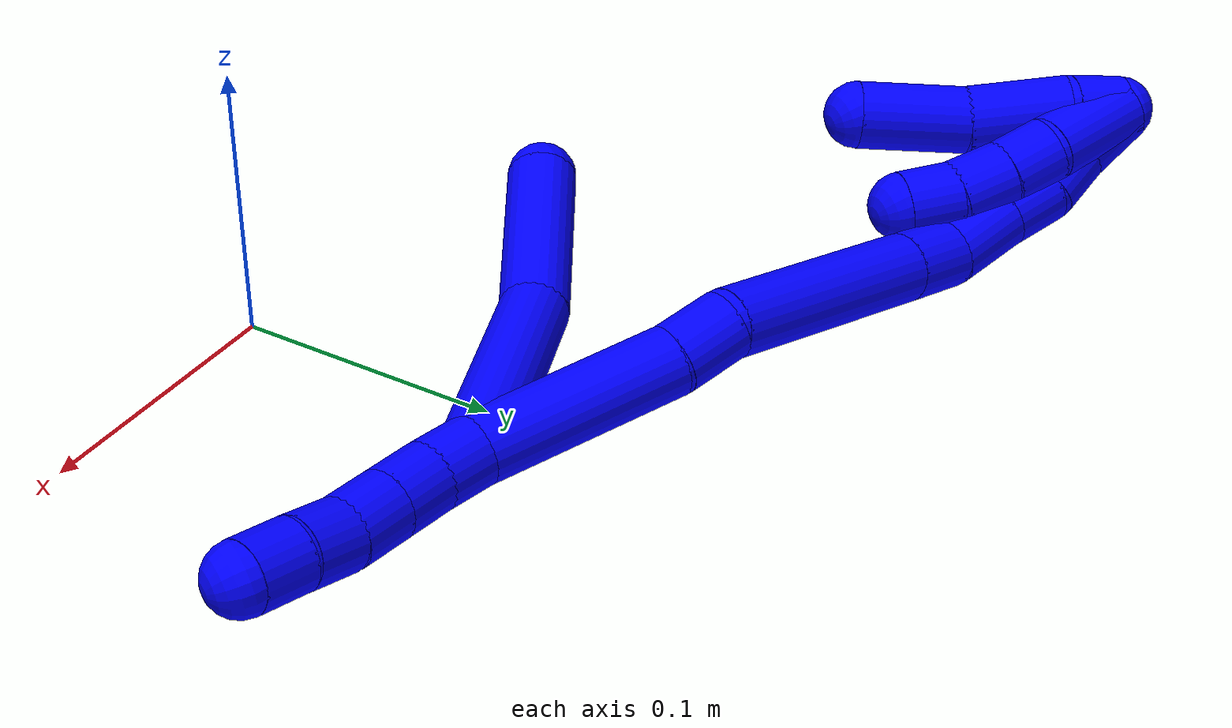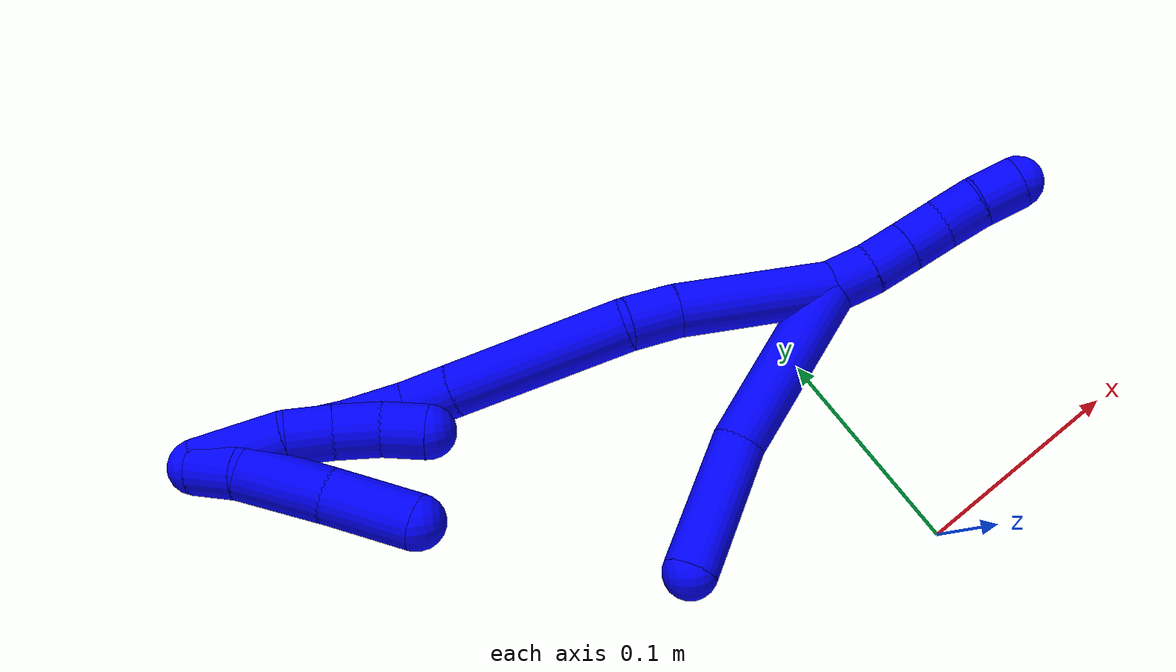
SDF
<sdf version="1.7">
 <world name="default">
  <model name="1">
   <static>0</static>
   <link name="1">
    <collision name="collision-cylinder-e_1_2_8">
     <pose>-0.031897 0.00626 0.027289 -0.225494 -0.850404 0.102455</pose>
     <geometry><cylinder><radius>0.0125</radius><length>0.084883</length></cylinder></geometry>
     <surface>
      <friction><ode><mu>1.16</mu><mu2>1.16</mu2><slip1>0</slip1><slip2>0</slip2></ode></friction>
      <contact><ode><kp>1e+06</kp><kd>1</kd><max_vel>0</max_vel><min_depth>0.001</min_depth></ode></contact>
     </surface>
    </collision>
    <visual name="visual-cylinder-e_1_2_8">
     <pose>-0.031897 0.00626 0.027289 -0.225494 -0.850404 0.102455</pose>
     <geometry><cylinder><radius>0.0125</radius><length>0.084883</length></cylinder></geometry>
     <material><ambient>0 0 1 1</ambient></material>
    </visual>
    <collision name="collision-cylinder-e_2_8_6">
     <pose>-0.09135 0.007956 0.071307 0.266302 -1.00913 -0.14767</pose>
     <geometry><cylinder><radius>0.0125</radius><length>0.065117</length></cylinder></geometry>
     <surface>
      <friction><ode><mu>1.16</mu><mu2>1.16</mu2><slip1>0</slip1><slip2>0</slip2></ode></friction>
      <contact><ode><kp>1e+06</kp><kd>1</kd><max_vel>0</max_vel><min_depth>0.001</min_depth></ode></contact>
     </surface>
    </collision>
    <visual name="visual-cylinder-e_2_8_6">
     <pose>-0.09135 0.007956 0.071307 0.266302 -1.00913 -0.14767</pose>
     <geometry><cylinder><radius>0.0125</radius><length>0.065117</length></cylinder></geometry>
     <material><ambient>0 0 1 1</ambient></material>
    </visual>
    <collision name="collision-cylinder-e_1_2_9">
     <pose>0.00269 -0.001166 -0.009561 3.02025 0.272355 2.30704</pose>
     <geometry><cylinder><radius>0.0125</radius><length>0.02</length></cylinder></geometry>
     <surface>
      <friction><ode><mu>1.16</mu><mu2>1.16</mu2><slip1>0</slip1><slip2>0</slip2></ode></friction>
      <contact><ode><kp>1e+06</kp><kd>1</kd><max_vel>0</max_vel><min_depth>0.001</min_depth></ode></contact>
     </surface>
    </collision>
    <visual name="visual-cylinder-e_1_2_9">
     <pose>0.00269 -0.001166 -0.009561 3.02025 0.272355 2.30704</pose>
     <geometry><cylinder><radius>0.0125</radius><length>0.02</length></cylinder></geometry>
     <material><ambient>0 0 1 1</ambient></material>
    </visual>
    <collision name="collision-cylinder-e_2_9_10">
     <pose>0.009068 -0.004043 -0.028257 2.9564 0.377685 2.237</pose>
     <geometry><cylinder><radius>0.0125</radius><length>0.02</length></cylinder></geometry>
     <surface>
      <friction><ode><mu>1.16</mu><mu2>1.16</mu2><slip1>0</slip1><slip2>0</slip2></ode></friction>
      <contact><ode><kp>1e+06</kp><kd>1</kd><max_vel>0</max_vel><min_depth>0.001</min_depth></ode></contact>
     </surface>
    </collision>
    <visual name="visual-cylinder-e_2_9_10">
     <pose>0.009068 -0.004043 -0.028257 2.9564 0.377685 2.237</pose>
     <geometry><cylinder><radius>0.0125</radius><length>0.02</length></cylinder></geometry>
     <material><ambient>0 0 1 1</ambient></material>
    </visual>
    <collision name="collision-cylinder-e_3_10_11">
     <pose>0.016504 -0.007547 -0.04649 2.94709 0.384281 2.21192</pose>
     <geometry><cylinder><radius>0.0125</radius><length>0.02</length></cylinder></geometry>
     <surface>
      <friction><ode><mu>1.16</mu><mu2>1.16</mu2><slip1>0</slip1><slip2>0</slip2></ode></friction>
      <contact><ode><kp>1e+06</kp><kd>1</kd><max_vel>0</max_vel><min_depth>0.001</min_depth></ode></contact>
     </surface>
    </collision>
    <visual name="visual-cylinder-e_3_10_11">
     <pose>0.016504 -0.007547 -0.04649 2.94709 0.384281 2.21192</pose>
     <geometry><cylinder><radius>0.0125</radius><length>0.02</length></cylinder></geometry>
     <material><ambient>0 0 1 1</ambient></material>
    </visual>
    <collision name="collision-cylinder-e_4_11_12">
     <pose>0.023421 -0.012743 -0.064438 2.77445 0.322378 1.43855</pose>
     <geometry><cylinder><radius>0.0125</radius><length>0.02</length></cylinder></geometry>
     <surface>
      <friction><ode><mu>1.16</mu><mu2>1.16</mu2><slip1>0</slip1><slip2>0</slip2></ode></friction>
      <contact><ode><kp>1e+06</kp><kd>1</kd><max_vel>0</max_vel><min_depth>0.001</min_depth></ode></contact>
     </surface>
    </collision>
    <visual name="visual-cylinder-e_4_11_12">
     <pose>0.023421 -0.012743 -0.064438 2.77445 0.322378 1.43855</pose>
     <geometry><cylinder><radius>0.0125</radius><length>0.02</length></cylinder></geometry>
     <material><ambient>0 0 1 1</ambient></material>
    </visual>
    <collision name="collision-cylinder-e_5_12_5">
     <pose>0.029197 -0.018583 -0.082633 2.88656 0.263747 1.60478</pose>
     <geometry><cylinder><radius>0.0125</radius><length>0.02</length></cylinder></geometry>
     <surface>
      <friction><ode><mu>1.16</mu><mu2>1.16</mu2><slip1>0</slip1><slip2>0</slip2></ode></friction>
      <contact><ode><kp>1e+06</kp><kd>1</kd><max_vel>0</max_vel><min_depth>0.001</min_depth></ode></contact>
     </surface>
    </collision>
    <visual name="visual-cylinder-e_5_12_5">
     <pose>0.029197 -0.018583 -0.082633 2.88656 0.263747 1.60478</pose>
     <geometry><cylinder><radius>0.0125</radius><length>0.02</length></cylinder></geometry>
     <material><ambient>0 0 1 1</ambient></material>
    </visual>
    <collision name="collision-cylinder-e_1_2_13">
     <pose>-0.000793 -0.000786 0.037102 0.021182 -0.021372 -0.000226</pose>
     <geometry><cylinder><radius>0.0125</radius><length>0.074237</length></cylinder></geometry>
     <surface>
      <friction><ode><mu>1.16</mu><mu2>1.16</mu2><slip1>0</slip1><slip2>0</slip2></ode></friction>
      <contact><ode><kp>1e+06</kp><kd>1</kd><max_vel>0</max_vel><min_depth>0.001</min_depth></ode></contact>
     </surface>
    </collision>
    <visual name="visual-cylinder-e_1_2_13">
     <pose>-0.000793 -0.000786 0.037102 0.021182 -0.021372 -0.000226</pose>
     <geometry><cylinder><radius>0.0125</radius><length>0.074237</length></cylinder></geometry>
     <material><ambient>0 0 1 1</ambient></material>
    </visual>
    <collision name="collision-cylinder-e_2_13_14">
     <pose>-0.003511 -0.002489 0.085995 0.077599 -0.161309 -0.006275</pose>
     <geometry><cylinder><radius>0.0125</radius><length>0.023967</length></cylinder></geometry>
     <surface>
      <friction><ode><mu>1.16</mu><mu2>1.16</mu2><slip1>0</slip1><slip2>0</slip2></ode></friction>
      <contact><ode><kp>1e+06</kp><kd>1</kd><max_vel>0</max_vel><min_depth>0.001</min_depth></ode></contact>
     </surface>
    </collision>
    <visual name="visual-cylinder-e_2_13_14">
     <pose>-0.003511 -0.002489 0.085995 0.077599 -0.161309 -0.006275</pose>
     <geometry><cylinder><radius>0.0125</radius><length>0.023967</length></cylinder></geometry>
     <material><ambient>0 0 1 1</ambient></material>
    </visual>
    <collision name="collision-cylinder-e_3_14_15">
     <pose>-0.012034 0.007093 0.138141 -0.254527 -0.156946 0.020123</pose>
     <geometry><cylinder><radius>0.0125</radius><length>0.084432</length></cylinder></geometry>
     <surface>
      <friction><ode><mu>1.16</mu><mu2>1.16</mu2><slip1>0</slip1><slip2>0</slip2></ode></friction>
      <contact><ode><kp>1e+06</kp><kd>1</kd><max_vel>0</max_vel><min_depth>0.001</min_depth></ode></contact>
     </surface>
    </collision>
    <visual name="visual-cylinder-e_3_14_15">
     <pose>-0.012034 0.007093 0.138141 -0.254527 -0.156946 0.020123</pose>
     <geometry><cylinder><radius>0.0125</radius><length>0.084432</length></cylinder></geometry>
     <material><ambient>0 0 1 1</ambient></material>
    </visual>
    <collision name="collision-cylinder-e_4_15_16">
     <pose>-0.020542 0.02046 0.189818 -0.2481 -0.162034 0.020248</pose>
     <geometry><cylinder><radius>0.0125</radius><length>0.023671</length></cylinder></geometry>
     <surface>
      <friction><ode><mu>1.16</mu><mu2>1.16</mu2><slip1>0</slip1><slip2>0</slip2></ode></friction>
      <contact><ode><kp>1e+06</kp><kd>1</kd><max_vel>0</max_vel><min_depth>0.001</min_depth></ode></contact>
     </surface>
    </collision>
    <visual name="visual-cylinder-e_4_15_16">
     <pose>-0.020542 0.02046 0.189818 -0.2481 -0.162034 0.020248</pose>
     <geometry><cylinder><radius>0.0125</radius><length>0.023671</length></cylinder></geometry>
     <material><ambient>0 0 1 1</ambient></material>
    </visual>
    <collision name="collision-cylinder-e_5_16_17">
     <pose>-0.025143 0.022345 0.214704 0.072396 -0.195391 -0.007098</pose>
     <geometry><cylinder><radius>0.0125</radius><length>0.027727</length></cylinder></geometry>
     <surface>
      <friction><ode><mu>1.16</mu><mu2>1.16</mu2><slip1>0</slip1><slip2>0</slip2></ode></friction>
      <contact><ode><kp>1e+06</kp><kd>1</kd><max_vel>0</max_vel><min_depth>0.001</min_depth></ode></contact>
     </surface>
    </collision>
    <visual name="visual-cylinder-e_5_16_17">
     <pose>-0.025143 0.022345 0.214704 0.072396 -0.195391 -0.007098</pose>
     <geometry><cylinder><radius>0.0125</radius><length>0.027727</length></cylinder></geometry>
     <material><ambient>0 0 1 1</ambient></material>
    </visual>
    <collision name="collision-cylinder-e_6_17_18">
     <pose>-0.028946 0.020682 0.238854 0.064018 -0.104382 -0.003345</pose>
     <geometry><cylinder><radius>0.0125</radius><length>0.02133</length></cylinder></geometry>
     <surface>
      <friction><ode><mu>1.16</mu><mu2>1.16</mu2><slip1>0</slip1><slip2>0</slip2></ode></friction>
      <contact><ode><kp>1e+06</kp><kd>1</kd><max_vel>0</max_vel><min_depth>0.001</min_depth></ode></contact>
     </surface>
    </collision>
    <visual name="visual-cylinder-e_6_17_18">
     <pose>-0.028946 0.020682 0.238854 0.064018 -0.104382 -0.003345</pose>
     <geometry><cylinder><radius>0.0125</radius><length>0.02133</length></cylinder></geometry>
     <material><ambient>0 0 1 1</ambient></material>
    </visual>
    <collision name="collision-cylinder-e_7_18_19">
     <pose>-0.033163 0.017098 0.258624 0.306448 -0.311859 -0.048546</pose>
     <geometry><cylinder><radius>0.0125</radius><length>0.020243</length></cylinder></geometry>
     <surface>
      <friction><ode><mu>1.16</mu><mu2>1.16</mu2><slip1>0</slip1><slip2>0</slip2></ode></friction>
      <contact><ode><kp>1e+06</kp><kd>1</kd><max_vel>0</max_vel><min_depth>0.001</min_depth></ode></contact>
     </surface>
    </collision>
    <visual name="visual-cylinder-e_7_18_19">
     <pose>-0.033163 0.017098 0.258624 0.306448 -0.311859 -0.048546</pose>
     <geometry><cylinder><radius>0.0125</radius><length>0.020243</length></cylinder></geometry>
     <material><ambient>0 0 1 1</ambient></material>
    </visual>
    <collision name="collision-cylinder-e_8_19_1">
     <pose>-0.038061 0.010159 0.279179 0.340834 -0.147508 -0.025429</pose>
     <geometry><cylinder><radius>0.0125</radius><length>0.024394</length></cylinder></geometry>
     <surface>
      <friction><ode><mu>1.16</mu><mu2>1.16</mu2><slip1>0</slip1><slip2>0</slip2></ode></friction>
      <contact><ode><kp>1e+06</kp><kd>1</kd><max_vel>0</max_vel><min_depth>0.001</min_depth></ode></contact>
     </surface>
    </collision>
    <visual name="visual-cylinder-e_8_19_1">
     <pose>-0.038061 0.010159 0.279179 0.340834 -0.147508 -0.025429</pose>
     <geometry><cylinder><radius>0.0125</radius><length>0.024394</length></cylinder></geometry>
     <material><ambient>0 0 1 1</ambient></material>
    </visual>
    <collision name="collision-cylinder-e_1_1_20">
     <pose>-0.042878 0.00393 0.280959 2.91649 -0.298299 -1.85181</pose>
     <geometry><cylinder><radius>0.0125</radius><length>0.020585</length></cylinder></geometry>
     <surface>
      <friction><ode><mu>1.16</mu><mu2>1.16</mu2><slip1>0</slip1><slip2>0</slip2></ode></friction>
      <contact><ode><kp>1e+06</kp><kd>1</kd><max_vel>0</max_vel><min_depth>0.001</min_depth></ode></contact>
     </surface>
    </collision>
    <visual name="visual-cylinder-e_1_1_20">
     <pose>-0.042878 0.00393 0.280959 2.91649 -0.298299 -1.85181</pose>
     <geometry><cylinder><radius>0.0125</radius><length>0.020585</length></cylinder></geometry>
     <material><ambient>0 0 1 1</ambient></material>
    </visual>
    <collision name="collision-cylinder-e_2_20_21">
     <pose>-0.053857 0.002186 0.253871 -3.11577 -0.426525 3.02249</pose>
     <geometry><cylinder><radius>0.0125</radius><length>0.038453</length></cylinder></geometry>
     <surface>
      <friction><ode><mu>1.16</mu><mu2>1.16</mu2><slip1>0</slip1><slip2>0</slip2></ode></friction>
      <contact><ode><kp>1e+06</kp><kd>1</kd><max_vel>0</max_vel><min_depth>0.001</min_depth></ode></contact>
     </surface>
    </collision>
    <visual name="visual-cylinder-e_2_20_21">
     <pose>-0.053857 0.002186 0.253871 -3.11577 -0.426525 3.02249</pose>
     <geometry><cylinder><radius>0.0125</radius><length>0.038453</length></cylinder></geometry>
     <material><ambient>0 0 1 1</ambient></material>
    </visual>
    <collision name="collision-cylinder-e_3_21_4">
     <pose>-0.070974 -0.000227 0.218281 2.9845 -0.463799 -2.49816</pose>
     <geometry><cylinder><radius>0.0125</radius><length>0.040962</length></cylinder></geometry>
     <surface>
      <friction><ode><mu>1.16</mu><mu2>1.16</mu2><slip1>0</slip1><slip2>0</slip2></ode></friction>
      <contact><ode><kp>1e+06</kp><kd>1</kd><max_vel>0</max_vel><min_depth>0.001</min_depth></ode></contact>
     </surface>
    </collision>
    <visual name="visual-cylinder-e_3_21_4">
     <pose>-0.070974 -0.000227 0.218281 2.9845 -0.463799 -2.49816</pose>
     <geometry><cylinder><radius>0.0125</radius><length>0.040962</length></cylinder></geometry>
     <material><ambient>0 0 1 1</ambient></material>
    </visual>
    <collision name="collision-cylinder-e_1_1_22">
     <pose>-0.036467 0.005544 0.271523 3.11102 0.176086 2.79859</pose>
     <geometry><cylinder><radius>0.0125</radius><length>0.038668</length></cylinder></geometry>
     <surface>
      <friction><ode><mu>1.16</mu><mu2>1.16</mu2><slip1>0</slip1><slip2>0</slip2></ode></friction>
      <contact><ode><kp>1e+06</kp><kd>1</kd><max_vel>0</max_vel><min_depth>0.001</min_depth></ode></contact>
     </surface>
    </collision>
    <visual name="visual-cylinder-e_1_1_22">
     <pose>-0.036467 0.005544 0.271523 3.11102 0.176086 2.79859</pose>
     <geometry><cylinder><radius>0.0125</radius><length>0.038668</length></cylinder></geometry>
     <material><ambient>0 0 1 1</ambient></material>
    </visual>
    <collision name="collision-cylinder-e_2_22_23">
     <pose>-0.032998 0.006284 0.242539 -3.00964 0.008129 -0.122872</pose>
     <geometry><cylinder><radius>0.0125</radius><length>0.020091</length></cylinder></geometry>
     <surface>
      <friction><ode><mu>1.16</mu><mu2>1.16</mu2><slip1>0</slip1><slip2>0</slip2></ode></friction>
      <contact><ode><kp>1e+06</kp><kd>1</kd><max_vel>0</max_vel><min_depth>0.001</min_depth></ode></contact>
     </surface>
    </collision>
    <visual name="visual-cylinder-e_2_22_23">
     <pose>-0.032998 0.006284 0.242539 -3.00964 0.008129 -0.122872</pose>
     <geometry><cylinder><radius>0.0125</radius><length>0.020091</length></cylinder></geometry>
     <material><ambient>0 0 1 1</ambient></material>
    </visual>
    <collision name="collision-cylinder-e_3_23_24">
     <pose>-0.033605 0.008537 0.222134 -3.05266 -0.06556 1.27026</pose>
     <geometry><cylinder><radius>0.0125</radius><length>0.021022</length></cylinder></geometry>
     <surface>
      <friction><ode><mu>1.16</mu><mu2>1.16</mu2><slip1>0</slip1><slip2>0</slip2></ode></friction>
      <contact><ode><kp>1e+06</kp><kd>1</kd><max_vel>0</max_vel><min_depth>0.001</min_depth></ode></contact>
     </surface>
    </collision>
    <visual name="visual-cylinder-e_3_23_24">
     <pose>-0.033605 0.008537 0.222134 -3.05266 -0.06556 1.27026</pose>
     <geometry><cylinder><radius>0.0125</radius><length>0.021022</length></cylinder></geometry>
     <material><ambient>0 0 1 1</ambient></material>
    </visual>
    <collision name="collision-cylinder-e_4_24_3">
     <pose>-0.036473 0.009125 0.201821 3.10679 -0.217278 -2.82515</pose>
     <geometry><cylinder><radius>0.0125</radius><length>0.020219</length></cylinder></geometry>
     <surface>
      <friction><ode><mu>1.16</mu><mu2>1.16</mu2><slip1>0</slip1><slip2>0</slip2></ode></friction>
      <contact><ode><kp>1e+06</kp><kd>1</kd><max_vel>0</max_vel><min_depth>0.001</min_depth></ode></contact>
     </surface>
    </collision>
    <visual name="visual-cylinder-e_4_24_3">
     <pose>-0.036473 0.009125 0.201821 3.10679 -0.217278 -2.82515</pose>
     <geometry><cylinder><radius>0.0125</radius><length>0.020219</length></cylinder></geometry>
     <material><ambient>0 0 1 1</ambient></material>
    </visual>
    <collision name="collision-sphere-3">
     <pose>-0.038652 0.008782 0.191955 0 -0 0</pose>
     <geometry><sphere><radius>0.0125</radius></sphere></geometry>
     <surface>
      <friction><ode><mu>1.16</mu><mu2>1.16</mu2><slip1>0</slip1><slip2>0</slip2></ode></friction>
      <contact><ode><kp>1e+06</kp><kd>1</kd><max_vel>0</max_vel><min_depth>0.001</min_depth></ode></contact>
     </surface>
    </collision>
    <visual name="visual-sphere-3">
     <pose>-0.038652 0.008782 0.191955 0 -0 0</pose>
     <geometry><sphere><radius>0.0125</radius></sphere></geometry>
     <material><ambient>0 0 1 1</ambient></material>
    </visual>
    <collision name="collision-sphere-24">
     <pose>-0.034294 0.009469 0.211687 0 -0 0</pose>
     <geometry><sphere><radius>0.0125</radius></sphere></geometry>
     <surface>
      <friction><ode><mu>1.16</mu><mu2>1.16</mu2><slip1>0</slip1><slip2>0</slip2></ode></friction>
      <contact><ode><kp>1e+06</kp><kd>1</kd><max_vel>0</max_vel><min_depth>0.001</min_depth></ode></contact>
     </surface>
    </collision>
    <visual name="visual-sphere-24">
     <pose>-0.034294 0.009469 0.211687 0 -0 0</pose>
     <geometry><sphere><radius>0.0125</radius></sphere></geometry>
     <material><ambient>0 0 1 1</ambient></material>
    </visual>
    <collision name="collision-sphere-23">
     <pose>-0.032916 0.007606 0.232581 0 -0 0</pose>
     <geometry><sphere><radius>0.0125</radius></sphere></geometry>
     <surface>
      <friction><ode><mu>1.16</mu><mu2>1.16</mu2><slip1>0</slip1><slip2>0</slip2></ode></friction>
      <contact><ode><kp>1e+06</kp><kd>1</kd><max_vel>0</max_vel><min_depth>0.001</min_depth></ode></contact>
     </surface>
    </collision>
    <visual name="visual-sphere-23">
     <pose>-0.032916 0.007606 0.232581 0 -0 0</pose>
     <geometry><sphere><radius>0.0125</radius></sphere></geometry>
     <material><ambient>0 0 1 1</ambient></material>
    </visual>
    <collision name="collision-sphere-22">
     <pose>-0.03308 0.004962 0.252497 0 -0 0</pose>
     <geometry><sphere><radius>0.0125</radius></sphere></geometry>
     <surface>
      <friction><ode><mu>1.16</mu><mu2>1.16</mu2><slip1>0</slip1><slip2>0</slip2></ode></friction>
      <contact><ode><kp>1e+06</kp><kd>1</kd><max_vel>0</max_vel><min_depth>0.001</min_depth></ode></contact>
     </surface>
    </collision>
    <visual name="visual-sphere-22">
     <pose>-0.03308 0.004962 0.252497 0 -0 0</pose>
     <geometry><sphere><radius>0.0125</radius></sphere></geometry>
     <material><ambient>0 0 1 1</ambient></material>
    </visual>
    <collision name="collision-sphere-4">
     <pose>-0.080136 -0.003093 0.200189 0 -0 0</pose>
     <geometry><sphere><radius>0.0125</radius></sphere></geometry>
     <surface>
      <friction><ode><mu>1.16</mu><mu2>1.16</mu2><slip1>0</slip1><slip2>0</slip2></ode></friction>
      <contact><ode><kp>1e+06</kp><kd>1</kd><max_vel>0</max_vel><min_depth>0.001</min_depth></ode></contact>
     </surface>
    </collision>
    <visual name="visual-sphere-4">
     <pose>-0.080136 -0.003093 0.200189 0 -0 0</pose>
     <geometry><sphere><radius>0.0125</radius></sphere></geometry>
     <material><ambient>0 0 1 1</ambient></material>
    </visual>
    <collision name="collision-sphere-21">
     <pose>-0.061812 0.002638 0.236373 0 -0 0</pose>
     <geometry><sphere><radius>0.0125</radius></sphere></geometry>
     <surface>
      <friction><ode><mu>1.16</mu><mu2>1.16</mu2><slip1>0</slip1><slip2>0</slip2></ode></friction>
      <contact><ode><kp>1e+06</kp><kd>1</kd><max_vel>0</max_vel><min_depth>0.001</min_depth></ode></contact>
     </surface>
    </collision>
    <visual name="visual-sphere-21">
     <pose>-0.061812 0.002638 0.236373 0 -0 0</pose>
     <geometry><sphere><radius>0.0125</radius></sphere></geometry>
     <material><ambient>0 0 1 1</ambient></material>
    </visual>
    <collision name="collision-sphere-20">
     <pose>-0.045903 0.001734 0.27137 0 -0 0</pose>
     <geometry><sphere><radius>0.0125</radius></sphere></geometry>
     <surface>
      <friction><ode><mu>1.16</mu><mu2>1.16</mu2><slip1>0</slip1><slip2>0</slip2></ode></friction>
      <contact><ode><kp>1e+06</kp><kd>1</kd><max_vel>0</max_vel><min_depth>0.001</min_depth></ode></contact>
     </surface>
    </collision>
    <visual name="visual-sphere-20">
     <pose>-0.045903 0.001734 0.27137 0 -0 0</pose>
     <geometry><sphere><radius>0.0125</radius></sphere></geometry>
     <material><ambient>0 0 1 1</ambient></material>
    </visual>
    <collision name="collision-sphere-11">
     <pose>0.020253 -0.009338 -0.055585 0 -0 0</pose>
     <geometry><sphere><radius>0.0125</radius></sphere></geometry>
     <surface>
      <friction><ode><mu>1.16</mu><mu2>1.16</mu2><slip1>0</slip1><slip2>0</slip2></ode></friction>
      <contact><ode><kp>1e+06</kp><kd>1</kd><max_vel>0</max_vel><min_depth>0.001</min_depth></ode></contact>
     </surface>
    </collision>
    <visual name="visual-sphere-11">
     <pose>0.020253 -0.009338 -0.055585 0 -0 0</pose>
     <geometry><sphere><radius>0.0125</radius></sphere></geometry>
     <material><ambient>0 0 1 1</ambient></material>
    </visual>
    <collision name="collision-sphere-10">
     <pose>0.012755 -0.005755 -0.037394 0 -0 0</pose>
     <geometry><sphere><radius>0.0125</radius></sphere></geometry>
     <surface>
      <friction><ode><mu>1.16</mu><mu2>1.16</mu2><slip1>0</slip1><slip2>0</slip2></ode></friction>
      <contact><ode><kp>1e+06</kp><kd>1</kd><max_vel>0</max_vel><min_depth>0.001</min_depth></ode></contact>
     </surface>
    </collision>
    <visual name="visual-sphere-10">
     <pose>0.012755 -0.005755 -0.037394 0 -0 0</pose>
     <geometry><sphere><radius>0.0125</radius></sphere></geometry>
     <material><ambient>0 0 1 1</ambient></material>
    </visual>
    <collision name="collision-sphere-6">
     <pose>-0.118906 0.003393 0.088037 0 -0 0</pose>
     <geometry><sphere><radius>0.0125</radius></sphere></geometry>
     <surface>
      <friction><ode><mu>1.16</mu><mu2>1.16</mu2><slip1>0</slip1><slip2>0</slip2></ode></friction>
      <contact><ode><kp>1e+06</kp><kd>1</kd><max_vel>0</max_vel><min_depth>0.001</min_depth></ode></contact>
     </surface>
    </collision>
    <visual name="visual-sphere-6">
     <pose>-0.118906 0.003393 0.088037 0 -0 0</pose>
     <geometry><sphere><radius>0.0125</radius></sphere></geometry>
     <material><ambient>0 0 1 1</ambient></material>
    </visual>
    <collision name="collision-sphere-9">
     <pose>0.00538 -0.002332 -0.019121 0 -0 0</pose>
     <geometry><sphere><radius>0.0125</radius></sphere></geometry>
     <surface>
      <friction><ode><mu>1.16</mu><mu2>1.16</mu2><slip1>0</slip1><slip2>0</slip2></ode></friction>
      <contact><ode><kp>1e+06</kp><kd>1</kd><max_vel>0</max_vel><min_depth>0.001</min_depth></ode></contact>
     </surface>
    </collision>
    <visual name="visual-sphere-9">
     <pose>0.00538 -0.002332 -0.019121 0 -0 0</pose>
     <geometry><sphere><radius>0.0125</radius></sphere></geometry>
     <material><ambient>0 0 1 1</ambient></material>
    </visual>
    <collision name="collision-sphere-2">
     <geometry><sphere><radius>0.0125</radius></sphere></geometry>
     <surface>
      <friction><ode><mu>1.16</mu><mu2>1.16</mu2><slip1>0</slip1><slip2>0</slip2></ode></friction>
      <contact><ode><kp>1e+06</kp><kd>1</kd><max_vel>0</max_vel><min_depth>0.001</min_depth></ode></contact>
     </surface>
    </collision>
    <visual name="visual-sphere-2">
     <geometry><sphere><radius>0.0125</radius></sphere></geometry>
     <material><ambient>0 0 1 1</ambient></material>
    </visual>
    <collision name="collision-sphere-19">
     <pose>-0.036268 0.014192 0.267808 0 -0 0</pose>
     <geometry><sphere><radius>0.0125</radius></sphere></geometry>
     <surface>
      <friction><ode><mu>1.16</mu><mu2>1.16</mu2><slip1>0</slip1><slip2>0</slip2></ode></friction>
      <contact><ode><kp>1e+06</kp><kd>1</kd><max_vel>0</max_vel><min_depth>0.001</min_depth></ode></contact>
     </surface>
    </collision>
    <visual name="visual-sphere-19">
     <pose>-0.036268 0.014192 0.267808 0 -0 0</pose>
     <geometry><sphere><radius>0.0125</radius></sphere></geometry>
     <material><ambient>0 0 1 1</ambient></material>
    </visual>
    <collision name="collision-sphere-8">
     <pose>-0.063794 0.01252 0.054578 0 -0 0</pose>
     <geometry><sphere><radius>0.0125</radius></sphere></geometry>
     <surface>
      <friction><ode><mu>1.16</mu><mu2>1.16</mu2><slip1>0</slip1><slip2>0</slip2></ode></friction>
      <contact><ode><kp>1e+06</kp><kd>1</kd><max_vel>0</max_vel><min_depth>0.001</min_depth></ode></contact>
     </surface>
    </collision>
    <visual name="visual-sphere-8">
     <pose>-0.063794 0.01252 0.054578 0 -0 0</pose>
     <geometry><sphere><radius>0.0125</radius></sphere></geometry>
     <material><ambient>0 0 1 1</ambient></material>
    </visual>
    <collision name="collision-sphere-12">
     <pose>0.02659 -0.016148 -0.073291 0 -0 0</pose>
     <geometry><sphere><radius>0.0125</radius></sphere></geometry>
     <surface>
      <friction><ode><mu>1.16</mu><mu2>1.16</mu2><slip1>0</slip1><slip2>0</slip2></ode></friction>
      <contact><ode><kp>1e+06</kp><kd>1</kd><max_vel>0</max_vel><min_depth>0.001</min_depth></ode></contact>
     </surface>
    </collision>
    <visual name="visual-sphere-12">
     <pose>0.02659 -0.016148 -0.073291 0 -0 0</pose>
     <geometry><sphere><radius>0.0125</radius></sphere></geometry>
     <material><ambient>0 0 1 1</ambient></material>
    </visual>
    <collision name="collision-sphere-5">
     <pose>0.031804 -0.021019 -0.091975 0 -0 0</pose>
     <geometry><sphere><radius>0.0125</radius></sphere></geometry>
     <surface>
      <friction><ode><mu>1.16</mu><mu2>1.16</mu2><slip1>0</slip1><slip2>0</slip2></ode></friction>
      <contact><ode><kp>1e+06</kp><kd>1</kd><max_vel>0</max_vel><min_depth>0.001</min_depth></ode></contact>
     </surface>
    </collision>
    <visual name="visual-sphere-5">
     <pose>0.031804 -0.021019 -0.091975 0 -0 0</pose>
     <geometry><sphere><radius>0.0125</radius></sphere></geometry>
     <material><ambient>0 0 1 1</ambient></material>
    </visual>
    <collision name="collision-sphere-13">
     <pose>-0.001586 -0.001572 0.074203 0 -0 0</pose>
     <geometry><sphere><radius>0.0125</radius></sphere></geometry>
     <surface>
      <friction><ode><mu>1.16</mu><mu2>1.16</mu2><slip1>0</slip1><slip2>0</slip2></ode></friction>
      <contact><ode><kp>1e+06</kp><kd>1</kd><max_vel>0</max_vel><min_depth>0.001</min_depth></ode></contact>
     </surface>
    </collision>
    <visual name="visual-sphere-13">
     <pose>-0.001586 -0.001572 0.074203 0 -0 0</pose>
     <geometry><sphere><radius>0.0125</radius></sphere></geometry>
     <material><ambient>0 0 1 1</ambient></material>
    </visual>
    <collision name="collision-sphere-14">
     <pose>-0.005436 -0.003406 0.097787 0 -0 0</pose>
     <geometry><sphere><radius>0.0125</radius></sphere></geometry>
     <surface>
      <friction><ode><mu>1.16</mu><mu2>1.16</mu2><slip1>0</slip1><slip2>0</slip2></ode></friction>
      <contact><ode><kp>1e+06</kp><kd>1</kd><max_vel>0</max_vel><min_depth>0.001</min_depth></ode></contact>
     </surface>
    </collision>
    <visual name="visual-sphere-14">
     <pose>-0.005436 -0.003406 0.097787 0 -0 0</pose>
     <geometry><sphere><radius>0.0125</radius></sphere></geometry>
     <material><ambient>0 0 1 1</ambient></material>
    </visual>
    <collision name="collision-sphere-15">
     <pose>-0.018633 0.017592 0.178495 0 -0 0</pose>
     <geometry><sphere><radius>0.0125</radius></sphere></geometry>
     <surface>
      <friction><ode><mu>1.16</mu><mu2>1.16</mu2><slip1>0</slip1><slip2>0</slip2></ode></friction>
      <contact><ode><kp>1e+06</kp><kd>1</kd><max_vel>0</max_vel><min_depth>0.001</min_depth></ode></contact>
     </surface>
    </collision>
    <visual name="visual-sphere-15">
     <pose>-0.018633 0.017592 0.178495 0 -0 0</pose>
     <geometry><sphere><radius>0.0125</radius></sphere></geometry>
     <material><ambient>0 0 1 1</ambient></material>
    </visual>
    <collision name="collision-sphere-16">
     <pose>-0.022451 0.023328 0.20114 0 -0 0</pose>
     <geometry><sphere><radius>0.0125</radius></sphere></geometry>
     <surface>
      <friction><ode><mu>1.16</mu><mu2>1.16</mu2><slip1>0</slip1><slip2>0</slip2></ode></friction>
      <contact><ode><kp>1e+06</kp><kd>1</kd><max_vel>0</max_vel><min_depth>0.001</min_depth></ode></contact>
     </surface>
    </collision>
    <visual name="visual-sphere-16">
     <pose>-0.022451 0.023328 0.20114 0 -0 0</pose>
     <geometry><sphere><radius>0.0125</radius></sphere></geometry>
     <material><ambient>0 0 1 1</ambient></material>
    </visual>
    <collision name="collision-sphere-17">
     <pose>-0.027835 0.021361 0.228268 0 -0 0</pose>
     <geometry><sphere><radius>0.0125</radius></sphere></geometry>
     <surface>
      <friction><ode><mu>1.16</mu><mu2>1.16</mu2><slip1>0</slip1><slip2>0</slip2></ode></friction>
      <contact><ode><kp>1e+06</kp><kd>1</kd><max_vel>0</max_vel><min_depth>0.001</min_depth></ode></contact>
     </surface>
    </collision>
    <visual name="visual-sphere-17">
     <pose>-0.027835 0.021361 0.228268 0 -0 0</pose>
     <geometry><sphere><radius>0.0125</radius></sphere></geometry>
     <material><ambient>0 0 1 1</ambient></material>
    </visual>
    <collision name="collision-sphere-18">
     <pose>-0.030057 0.020004 0.249439 0 -0 0</pose>
     <geometry><sphere><radius>0.0125</radius></sphere></geometry>
     <surface>
      <friction><ode><mu>1.16</mu><mu2>1.16</mu2><slip1>0</slip1><slip2>0</slip2></ode></friction>
      <contact><ode><kp>1e+06</kp><kd>1</kd><max_vel>0</max_vel><min_depth>0.001</min_depth></ode></contact>
     </surface>
    </collision>
    <visual name="visual-sphere-18">
     <pose>-0.030057 0.020004 0.249439 0 -0 0</pose>
     <geometry><sphere><radius>0.0125</radius></sphere></geometry>
     <material><ambient>0 0 1 1</ambient></material>
    </visual>
    <collision name="collision-sphere-1">
     <pose>-0.039853 0.006126 0.290549 0 -0 0</pose>
     <geometry><sphere><radius>0.0125</radius></sphere></geometry>
     <surface>
      <friction><ode><mu>1.16</mu><mu2>1.16</mu2><slip1>0</slip1><slip2>0</slip2></ode></friction>
      <contact><ode><kp>1e+06</kp><kd>1</kd><max_vel>0</max_vel><min_depth>0.001</min_depth></ode></contact>
     </surface>
    </collision>
    <visual name="visual-sphere-1">
     <pose>-0.039853 0.006126 0.290549 0 -0 0</pose>
     <geometry><sphere><radius>0.0125</radius></sphere></geometry>
     <material><ambient>0 0 1 1</ambient></material>
    </visual>
    <inertial>
     <pose>-0.027968 0.004864 0.126676 0 -0 0</pose>
     <mass>0.75</mass>
     <inertia>
      <ixx>0.000126</ixx>
      <ixy>0</ixy>
      <ixz>0</ixz>
      <iyy>0.000206</iyy>
      <iyz>0</iyz>
      <izz>7.1e-05</izz>
     </inertia>
    </inertial>
   </link>
   <pose>0.034 0.118854 0.013079 -1.47044 0.089728 1.06623</pose>
  </model>
 </world>
</sdf>
